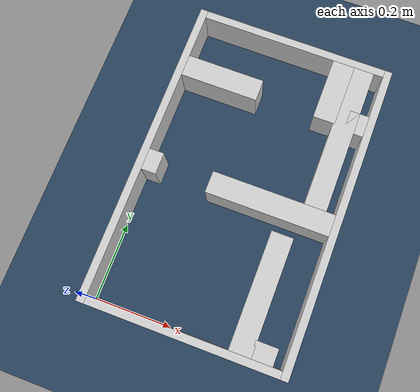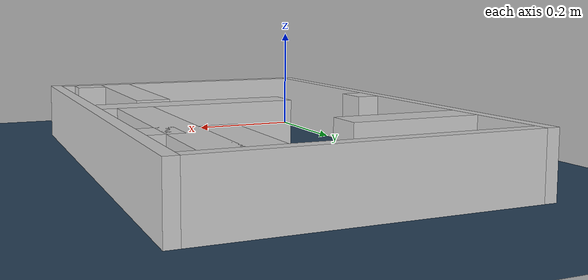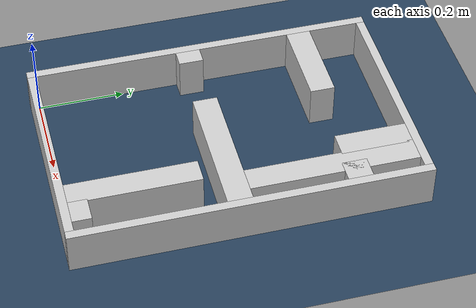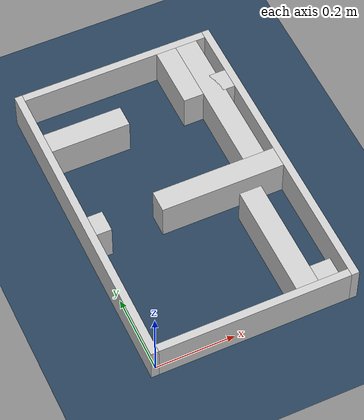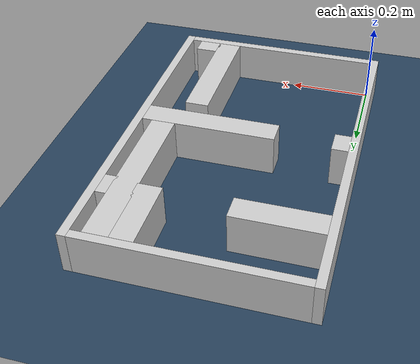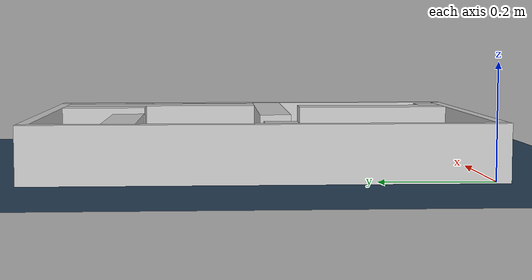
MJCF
<?xml version="1.0" ?>
<mujoco model="generated_real_template">
  <compiler angle="degree"/>
  <option timestep="0.002" integrator="implicitfast" iterations="100" cone="elliptic"/>
  <default>
    <geom density="1"/>
  </default>
  <asset>
    <texture builtin="gradient" height="3072" rgb1="0.3 0.5 0.7" rgb2="0 0 0" type="skybox" width="512"/>
    <texture builtin="checker" height="300" mark="edge" markrgb="0.8 0.8 0.8" name="groundplane" rgb1="0.2 0.3 0.4" rgb2="0.1 0.2 0.3" type="2d" width="300"/>
    <material name="groundplane" reflectance="0.2" texrepeat="5 5" texture="groundplane" texuniform="true"/>
  </asset>
  <worldbody>
    <light dir="0 0 -1" directional="true" pos="0 0 1.5"/>
    <geom name="floor" type="plane" condim="4" friction="0.5 0.005 0.001" material="groundplane" size="0 0 0.05"/>
    <body name="walls">
      <geom name="wall_boundary_left" type="box" condim="4" friction="1.0 0.005 0.0001" rgba="0.8 0.8 0.8 1" pos="-0.010000 0.387500 0.050000" euler="0 0 0.000000" size="0.010000 0.407500 0.050000"/>
      <geom name="wall_boundary_right" type="box" condim="4" friction="1.0 0.005 0.0001" rgba="0.8 0.8 0.8 1" pos="0.500000 0.387500 0.050000" euler="0 0 0.000000" size="0.010000 0.407500 0.050000"/>
      <geom name="wall_boundary_bottom" type="box" condim="4" friction="1.0 0.005 0.0001" rgba="0.8 0.8 0.8 1" pos="0.245000 -0.010000 0.050000" euler="0 0 0.000000" size="0.245000 0.010000 0.050000"/>
      <geom name="wall_boundary_top" type="box" condim="4" friction="1.0 0.005 0.0001" rgba="0.8 0.8 0.8 1" pos="0.245000 0.785000 0.050000" euler="0 0 0.000000" size="0.245000 0.010000 0.050000"/>
      <geom name="wall_inner_1_1" type="box" condim="4" friction="1.0 0.005 0.0001" rgba="0.8 0.8 0.8 1" pos="0.102346 0.629789 0.050000" euler="0 0 0.000000" size="0.102346 0.028500 0.050000"/>
      <geom name="wall_inner_1_2" type="box" condim="4" friction="1.0 0.005 0.0001" rgba="0.8 0.8 0.8 1" pos="0.465151 0.629789 0.050000" euler="0 0 0.000000" size="0.024849 0.028500 0.050000"/>
      <geom name="wall_inner_2_1" type="box" condim="4" friction="1.0 0.005 0.0001" rgba="0.8 0.8 0.8 1" pos="0.019355 0.359734 0.050000" euler="0 0 0.000000" size="0.019355 0.028500 0.050000"/>
      <geom name="wall_inner_2_2" type="box" condim="4" friction="1.0 0.005 0.0001" rgba="0.8 0.8 0.8 1" pos="0.329972 0.359734 0.050000" euler="0 0 0.000000" size="0.160028 0.028500 0.050000"/>
      <geom name="wall_inner_3_1" type="box" condim="4" friction="1.0 0.005 0.0001" rgba="0.8 0.8 0.8 1" pos="0.437210 0.021835 0.050000" euler="0 0 90.000000" size="0.021835 0.028500 0.050000"/>
      <geom name="wall_inner_3_2" type="box" condim="4" friction="1.0 0.005 0.0001" rgba="0.8 0.8 0.8 1" pos="0.437210 0.581503 0.050000" euler="0 0 90.000000" size="0.193497 0.028500 0.050000"/>
      <geom name="wall_inner_4_1" type="box" condim="4" friction="1.0 0.005 0.0001" rgba="0.8 0.8 0.8 1" pos="0.384511 0.149083 0.050000" euler="0 0 90.000000" size="0.149083 0.028500 0.050000"/>
      <geom name="wall_inner_4_2" type="box" condim="4" friction="1.0 0.005 0.0001" rgba="0.8 0.8 0.8 1" pos="0.384511 0.692803 0.050000" euler="0 0 90.000000" size="0.082197 0.028500 0.050000"/>
    </body>
  </worldbody>
</mujoco>
